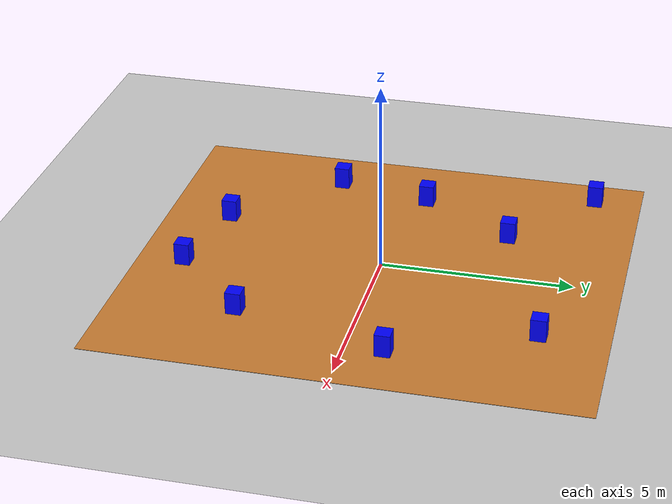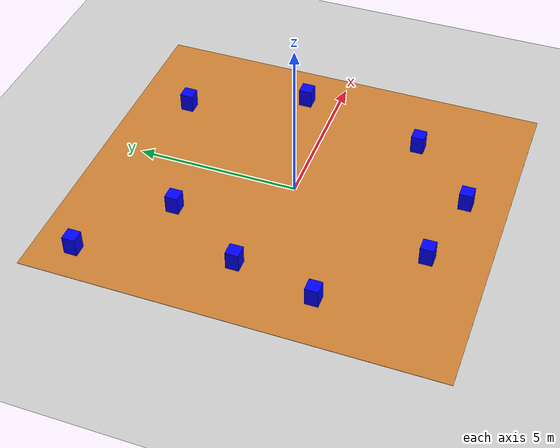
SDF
<?xml version="1.0" ?>
<sdf version="1.6">
  <world name="basketball_half_court">

    <physics name="1ms" type="ignored">
      <max_step_size>0.001</max_step_size>
      <real_time_factor>1.0</real_time_factor>
    </physics>

    <plugin filename="libignition-gazebo-physics-system.so" name="ignition::gazebo::systems::Physics"></plugin>
    <plugin filename="libignition-gazebo-user-commands-system.so" name="ignition::gazebo::systems::UserCommands"></plugin>
    <plugin filename="libignition-gazebo-scene-broadcaster-system.so" name="ignition::gazebo::systems::SceneBroadcaster"></plugin>
    <plugin filename="libignition-gazebo-sensors-system.so" name="ignition::gazebo::systems::Sensors">
      <render_engine>ogre2</render_engine>
    </plugin>
    <plugin filename="libignition-gazebo-imu-system.so" name="ignition::gazebo::systems::Imu"></plugin>

    <light type="directional" name="sun">
      <cast_shadows>true</cast_shadows>
      <pose>0 0 10 0 0 0</pose>
      <diffuse>0.8 0.8 0.8 1</diffuse>
      <specular>0.2 0.2 0.2 1</specular>
      <direction>-0.5 0.1 -0.9</direction>
    </light>

    <model name="ground_plane">
      <static>true</static>
      <link name="link">
        <collision name="collision">
          <geometry><plane><normal>0 0 1</normal><size>100 100</size></plane></geometry>
        </collision>
        <visual name="visual">
          <geometry><plane><normal>0 0 1</normal><size>100 100</size></plane></geometry>
          <material><ambient>0.8 0.8 0.8 1</ambient><diffuse>0.8 0.8 0.8 1</diffuse></material>
        </visual>
      </link>
    </model>

    <!-- Basketball Half-Court -->
    <model name="half_court">
      <static>true</static>
      <link name="link">
        <pose>0 0 0.01 0 0 0</pose>
        <visual name="visual">
          <geometry><box><size>11 12.5 0.01</size></box></geometry>
          <material><ambient>0.8 0.5 0.2 1</ambient><diffuse>0.8 0.5 0.2 1</diffuse></material>
        </visual>
        <collision name="collision">
          <geometry><box><size>11 12.5 0.01</size></box></geometry>
        </collision>
      </link>
    </model>

    <!-- Obstacles -->
    <model name="prism_1"><static>true</static><link name="link"><pose>-2.0 3.0 0.31 0 0 0</pose><visual name="v"><geometry><box><size>0.4 0.4 0.6</size></box></geometry><material><ambient>0 0 1 1</ambient><diffuse>0 0 1 1</diffuse></material></visual><collision name="c"><geometry><box><size>0.4 0.4 0.6</size></box></geometry></collision></link></model>
    <model name="prism_2"><static>true</static><link name="link"><pose>2.5 4.5 0.31 0 0 0</pose><visual name="v"><geometry><box><size>0.4 0.4 0.6</size></box></geometry><material><ambient>0 0 1 1</ambient><diffuse>0 0 1 1</diffuse></material></visual><collision name="c"><geometry><box><size>0.4 0.4 0.6</size></box></geometry></collision></link></model>
    <model name="prism_3"><static>true</static><link name="link"><pose>-4.0 -2.0 0.31 0 0 0</pose><visual name="v"><geometry><box><size>0.4 0.4 0.6</size></box></geometry><material><ambient>0 0 1 1</ambient><diffuse>0 0 1 1</diffuse></material></visual><collision name="c"><geometry><box><size>0.4 0.4 0.6</size></box></geometry></collision></link></model>
    <model name="prism_4"><static>true</static><link name="link"><pose>1.0 -5.0 0.31 0 0 0</pose><visual name="v"><geometry><box><size>0.4 0.4 0.6</size></box></geometry><material><ambient>0 0 1 1</ambient><diffuse>0 0 1 1</diffuse></material></visual><collision name="c"><geometry><box><size>0.4 0.4 0.6</size></box></geometry></collision></link></model>
    <model name="prism_5"><static>true</static><link name="link"><pose>4.0 1.0 0.31 0 0 0</pose><visual name="v"><geometry><box><size>0.4 0.4 0.6</size></box></geometry><material><ambient>0 0 1 1</ambient><diffuse>0 0 1 1</diffuse></material></visual><collision name="c"><geometry><box><size>0.4 0.4 0.6</size></box></geometry></collision></link></model>
    <model name="prism_6"><static>true</static><link name="link"><pose>-3.5 0.5 0.31 0 0 0</pose><visual name="v"><geometry><box><size>0.4 0.4 0.6</size></box></geometry><material><ambient>0 0 1 1</ambient><diffuse>0 0 1 1</diffuse></material></visual><collision name="c"><geometry><box><size>0.4 0.4 0.6</size></box></geometry></collision></link></model>
    <model name="prism_8"><static>true</static><link name="link"><pose>-1.5 -4.5 0.31 0 0 0</pose><visual name="v"><geometry><box><size>0.4 0.4 0.6</size></box></geometry><material><ambient>0 0 1 1</ambient><diffuse>0 0 1 1</diffuse></material></visual><collision name="c"><geometry><box><size>0.4 0.4 0.6</size></box></geometry></collision></link></model>
    <model name="prism_9"><static>true</static><link name="link"><pose>3.0 -3.0 0.31 0 0 0</pose><visual name="v"><geometry><box><size>0.4 0.4 0.6</size></box></geometry><material><ambient>0 0 1 1</ambient><diffuse>0 0 1 1</diffuse></material></visual><collision name="c"><geometry><box><size>0.4 0.4 0.6</size></box></geometry></collision></link></model>
    <model name="prism_10"><static>true</static><link name="link"><pose>-4.5 5.0 0.31 0 0 0</pose><visual name="v"><geometry><box><size>0.4 0.4 0.6</size></box></geometry><material><ambient>0 0 1 1</ambient><diffuse>0 0 1 1</diffuse></material></visual><collision name="c"><geometry><box><size>0.4 0.4 0.6</size></box></geometry></collision></link></model>

  </world>
</sdf>
